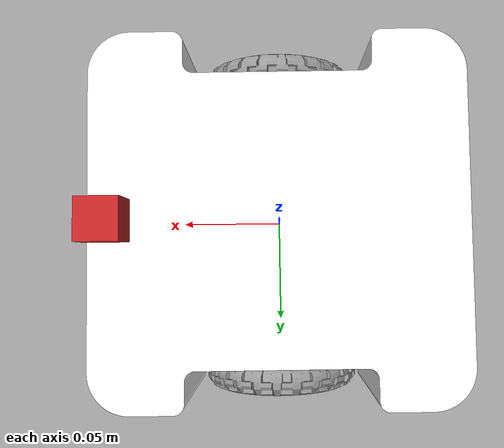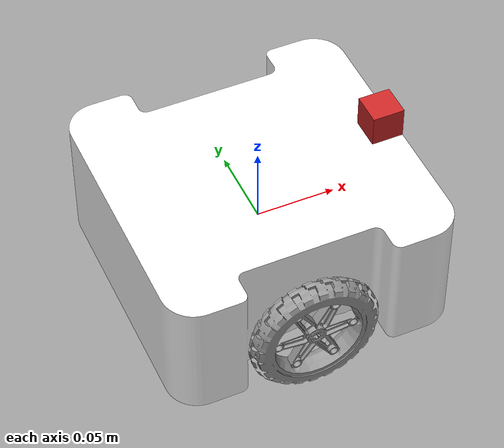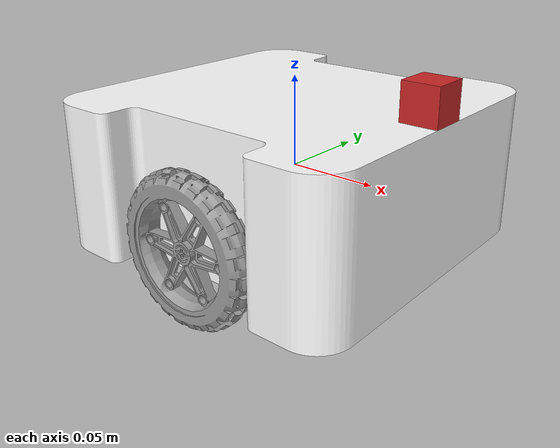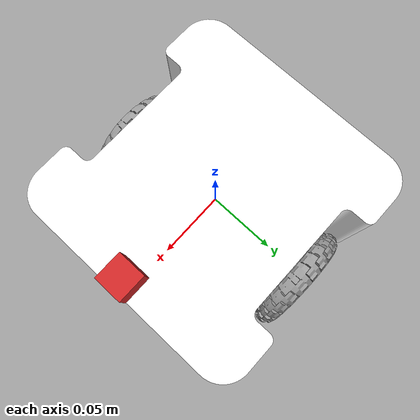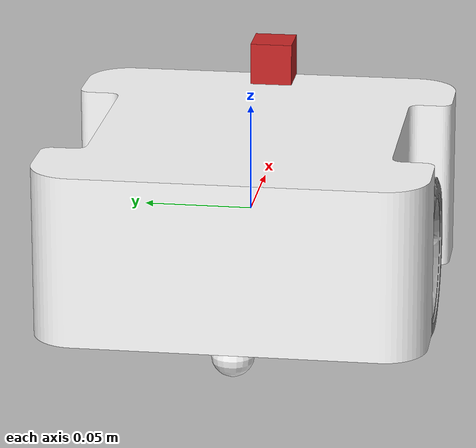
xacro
<?xml version="1.0"?>

<robot name="yatabot" xmlns:xacro="http://ros.org/wiki/xacro">

        <xacro:property name="width" value="0.18" />
        <xacro:property name="length" value="0.18" />
        <xacro:property name="height" value="0.08" />
        <xacro:property name="wheelark_length" value="0.09" />
        <xacro:property name="wheelark_depth" value="0.02" />
        <xacro:property name="clearance" value="0.021" />
        <xacro:property name="caster_diam" value="0.02" />

        <xacro:property name="wheeldiam" value="0.085" />
        <xacro:property name="wheelbase" value="0.16" />
        <xacro:property name="wheelwidth" value="0.015" />
        <xacro:property name="pi" value="3.141592" />
        <xacro:property name="camera_link" value="0.02" />

        <material name="white">
                <color rgba="1 1 1 1" />
        </material>

        <material name="black">
                <color rgba="0 0 0 1" />
        </material>

        <xacro:macro name="default_inertial" params="mass">
                <inertial>
                        <mass value="${mass}" />
                        <inertia ixx="1.0" ixy="0.0" ixz="0.0" iyy="1.0" iyz="0.0" izz="1.0" />
                </inertial>
        </xacro:macro>

        <xacro:macro name="wheel_inertial" params="mass r h">
                <inertial>
                        <mass value="${mass}" />
                        <inertia ixx="${mass*(3*r*r+h*h)/12}" ixy="0.0" ixz="0.0" iyy="${mass*(3*r*r+h*h)/12}" iyz="0.0" izz="${mass*r*r/2}" />
                </inertial>
        </xacro:macro>

        <link name="base_link">
                <visual>
                        <origin xyz="-${width/2} -${length/2} -${height/2}" rpy="0.0 0.0 ${pi/2}" />
                        <geometry>
                                <mesh filename="package://yatabot/meshes/yatabot_body.stl" scale="0.001 0.001 0.001" />
                        </geometry>
                        <material name="white" />
                </visual>
                <collision>
                        <geometry>
        <box size="${width-wheelark_depth*2} ${length} ${height}" />
                        </geometry>
                </collision>
                <inertial>
                        <mass value="1.5" />
                        <origin xyz="-0.02 0 0" />
                        <inertia ixx="1.0" ixy="0.0" ixz="0.0" iyy="1.0" iyz="0.0" izz="1.0" />
                </inertial>
        </link>

        <xacro:macro name="wheel" params="prefix base reflect">
                <link name="${prefix}_wheel">
                        <visual>
                                <origin xyz="0 0 0" rpy="0 0 ${pi/2} " />
                                <geometry>
                                        <mesh filename="package://yatabot/meshes/wheel.dae" />
                                </geometry>
                        </visual>
                        <collision>
                                <origin xyz="0 0 0" rpy="${pi/2} 0 0 " />
                                <geometry>
                                        <cylinder radius="${wheeldiam/2}" length="${wheelwidth}" />
                                </geometry>
                        </collision>
                        <xacro:wheel_inertial mass="0.3" r="${wheeldiam/6}" h="${wheelwidth}" />
                </link>
                <joint name="${prefix}_wheel_joint" type="continuous">
                        <axis xyz="0 1 0" rpy="0 0 0" />
                        <parent link="${base}" />
                        <child link="${prefix}_wheel" />
                        <origin xyz="0 ${wheelbase*reflect / 2} -${clearance}" rpy="0 0 0" />
                </joint>
                <gazebo reference="${prefix}_wheel">
                        <mu1 value="1.0" />
                        <mu2 value="1.0" />
                        <kp value="1000000.0" />
                        <kd value="1.0" />
                        <maxVel>0.0</maxVel>
                        <minDepth>0.001</minDepth>
                        <material>Gazebo/Grey</material>
                </gazebo>
                <transmission name="${prefix}_wheel_trans">
                        <type>transmission_interface/SimpleTransmission</type>
                        <actuator name="${prefix}_wheel_motor">
                                <mechanicalReduction>1</mechanicalReduction>
                        </actuator>
                        <joint name="${prefix}_wheel_joint">
                                <hardwareInterface>VelocityJointInterface</hardwareInterface>
                        </joint>
                </transmission>
        </xacro:macro>

  <xacro:wheel prefix="left" base="base_link" reflect="1" />
  <xacro:wheel prefix="right" base="base_link" reflect="-1" />

        <link name="caster">
                <visual>
                        <geometry>
                                <sphere radius="${caster_diam/2}" />
                        </geometry>
                        <material name="white" />
                </visual>
                <collision>
                        <geometry>
                                <sphere radius="${caster_diam/2}" />
                        </geometry>
                </collision>
                <xacro:default_inertial mass="0.08" />
        </link>
        <joint name="caster_joint" type="fixed">
                <parent link="base_link" />
                <child link="caster" />
                <origin xyz="-0.06 0 -${height/2+clearance-caster_diam/2}" rpy="0 0 0"/>
        </joint>
        <gazebo reference="caster">
                <mu1 value="0.01" />
                <mu2 value="0.01" />
                <kp value="1000000.0" />
                <kd value="1.0" />
                <maxVel>0.0</maxVel>
                <minDepth>0.001</minDepth>
                <material>Gazebo/Grey</material>
        </gazebo>

        <gazebo>
                <plugin name="gazebo_ros_control" filename="libgazebo_ros_control.so">
                        <robotNamespace>/</robotNamespace>
                </plugin>
              </gazebo>

  <joint name="camera_joint" type="fixed">
    <axis xyz="0 1 0" />
    <origin xyz="${length/2 - camera_link/2} 0 ${height/2 + camera_link/2}" rpy="0 0 0"/>
    <parent link="base_link"/>
    <child link="camera_link"/>
  </joint>

  <!-- Camera -->
  <link name="camera_link">
    <collision>
      <origin xyz="0 0 0" rpy="0 0 0"/>
      <geometry>
    <box size="${camera_link} ${camera_link} ${camera_link}"/>
      </geometry>
    </collision>

    <visual>
      <origin xyz="0 0 0" rpy="0 0 0"/>
      <geometry>
    <box size="${camera_link} ${camera_link} ${camera_link}"/>
      </geometry>
      <material name="red"/>
    </visual>

    <inertial>
      <mass value="1e-5" />
      <origin xyz="0 0 0" rpy="0 0 0"/>
      <inertia ixx="1e-6" ixy="0" ixz="0" iyy="1e-6" iyz="0" izz="1e-6" />
    </inertial>
  </link>

   <gazebo reference="camera_link">
    <sensor type="camera" name="camera1">
      <update_rate>30.0</update_rate>
      <camera name="head">
        <horizontal_fov>1.3962634</horizontal_fov>
        <image>
          <width>800</width>
          <height>800</height>
          <format>R8G8B8</format>
        </image>
        <clip>
          <near>0.02</near>
          <far>300</far>
        </clip>
        <noise>
          <type>gaussian</type>
          <!-- Noise is sampled independently per pixel on each frame.
               That pixel's noise value is added to each of its color
               channels, which at that point lie in the range [0,1]. -->
          <mean>0.0</mean>
          <stddev>0.007</stddev>
        </noise>
      </camera>
      <plugin name="camera_controller" filename="libgazebo_ros_camera.so">
        <alwaysOn>true</alwaysOn>
        <updateRate>0.0</updateRate>
        <cameraName>yatabot/camera1</cameraName>
        <imageTopicName>image_raw</imageTopicName>
        <cameraInfoTopicName>camera_info</cameraInfoTopicName>
        <frameName>camera_link</frameName>
        <hackBaseline>0.07</hackBaseline>
        <distortionK1>0.0</distortionK1>
        <distortionK2>0.0</distortionK2>
        <distortionK3>0.0</distortionK3>
        <distortionT1>0.0</distortionT1>
        <distortionT2>0.0</distortionT2>
      </plugin>
    </sensor>
  </gazebo>

</robot>
